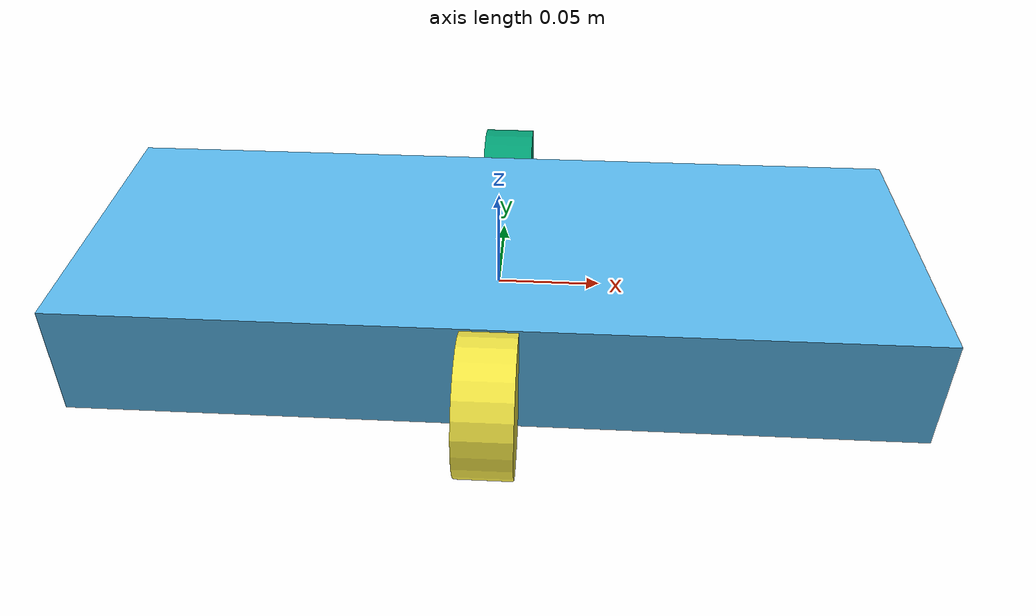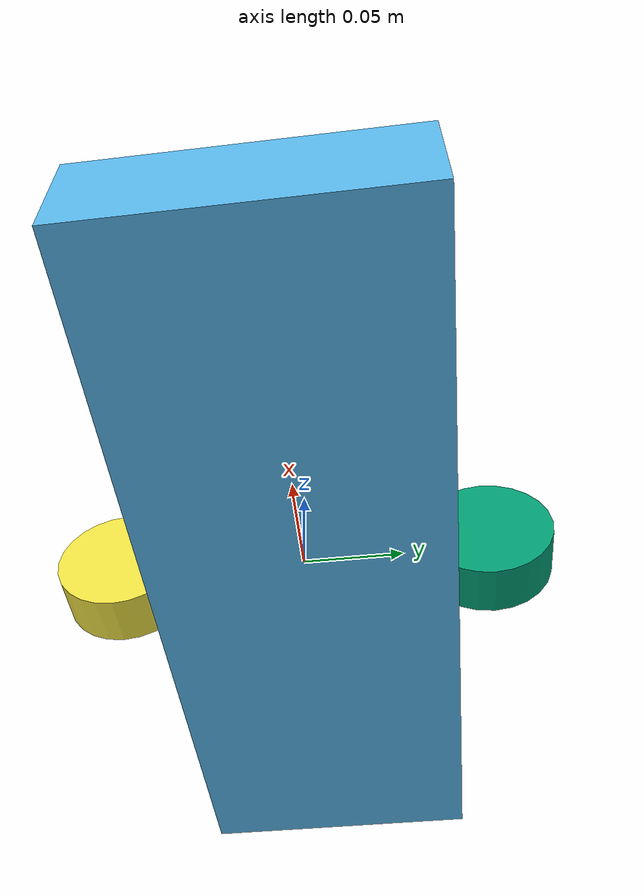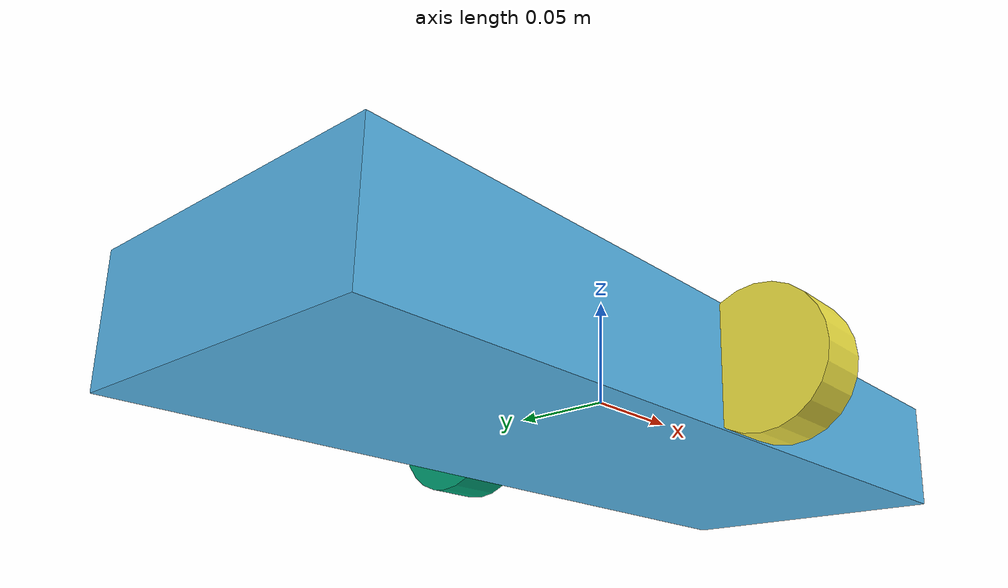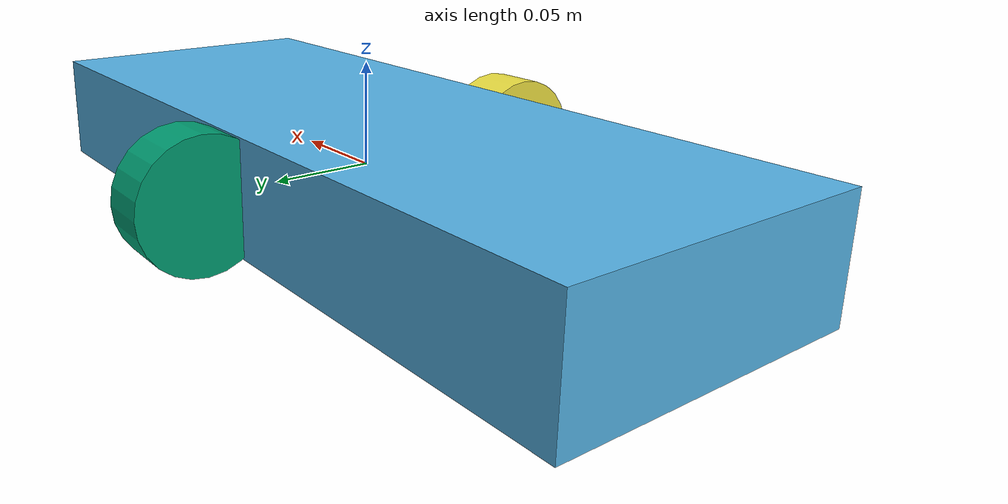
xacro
<?xml version='1.0'?>
<robot name="slambot" xmlns:xacro="http://www.ros.org/wiki/xacro">

    <link name="robot_footprint"></link>

    <joint name="robot_footprint_joint" type="fixed">
        <origin xyz="0 0 0" rpy="0 0 0" />
        <parent link="robot_footprint" />
        <child link="chassis" />
    </joint>

    <!-- Chassis Link -->
    <link name='chassis'>
        <visual name='chassis_visual'>
            <origin xyz="0 0 0" rpy=" 0 0 0" />
            <geometry>
                <box size="0.4 .15 .056" />
            </geometry>
        </visual>
    </link>

    <!-- Left Wheel Link -->
    <link name="left_wheel">
        <visual name="visual">
            <origin xyz="0 0 0" rpy="0 1.5708 0" />
            <geometry>
                <cylinder radius="0.032" length="0.026" />
            </geometry>
        </visual>
    </link>

    <!-- Left Wheel Joint -->
    <joint type="continuous" name="left_wheel_joint">
        <origin xyz="0 0.092 0" rpy="0 0 0" />
        <child link="left_wheel" />
        <parent link="chassis" />
        <axis xyz="0 0 1" />
        <limit effort="1.1" velocity="9.5" />
    </joint>

    <!-- Right Wheel Link -->
    <link name="right_wheel">
        <visual name="visual">
            <origin xyz="0 0 0" rpy="0 1.5708 0" />
            <geometry>
                <cylinder radius="0.032" length="0.026" />
            </geometry>
        </visual>
    </link>

    <!-- Right Wheel Joint -->
    <joint type="continuous" name="right_wheel_hinge">
        <origin xyz="0 -0.092 0" rpy="0 0 0" />
        <child link="right_wheel" />
        <parent link="chassis" />
        <axis xyz="0 0 1" />
        <limit effort="1.1" velocity="9.5" />
    </joint>

    <transmission name="left_wheel_trans">
        <type>transmission_interface/SimpleTransmission</type>
        <joint name="left_wheel_joint">
            <hardwareInterface>hardware_interface/VelocityJointInterface</hardwareInterface>
        </joint>
    </transmission>

    <transmission name="right_wheel_trans">
        <type>transmission_interface/SimpleTransmission</type>
        <joint name="right_wheel_hinge">
            <hardwareInterface>hardware_interface/VelocityJointInterface</hardwareInterface>
        </joint>
    </transmission>

</robot>
